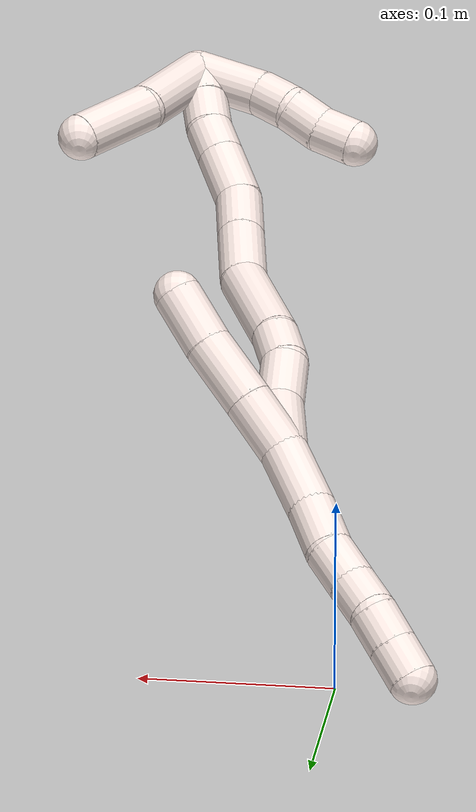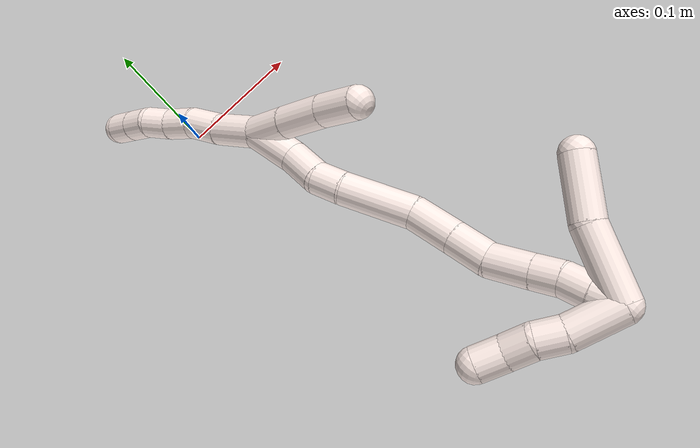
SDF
<sdf version="1.7">
 <world name="default">
  <model name="11">
   <static>0</static>
   <link name="11">
    <collision name="collision-cylinder-e_1_2_8">
     <pose>-0.008911 0.002092 -0.016258 -3.01365 -0.497924 2.64794</pose>
     <geometry><cylinder><radius>0.0125</radius><length>0.037315</length></cylinder></geometry>
     <surface>
      <friction><ode><mu>1.16</mu><mu2>1.16</mu2><slip1>0</slip1><slip2>0</slip2></ode></friction>
      <contact><ode><kp>1e+06</kp><kd>1</kd><max_vel>0</max_vel><min_depth>0.001</min_depth></ode></contact>
     </surface>
    </collision>
    <visual name="visual-cylinder-e_1_2_8">
     <pose>-0.008911 0.002092 -0.016258 -3.01365 -0.497924 2.64794</pose>
     <geometry><cylinder><radius>0.0125</radius><length>0.037315</length></cylinder></geometry>
     <material><ambient>1 0.933333 0.909804 1</ambient></material>
    </visual>
    <collision name="collision-cylinder-e_2_8_9">
     <pose>-0.022798 0.006316 -0.045427 -2.97787 -0.363394 2.30159</pose>
     <geometry><cylinder><radius>0.0125</radius><length>0.027999</length></cylinder></geometry>
     <surface>
      <friction><ode><mu>1.16</mu><mu2>1.16</mu2><slip1>0</slip1><slip2>0</slip2></ode></friction>
      <contact><ode><kp>1e+06</kp><kd>1</kd><max_vel>0</max_vel><min_depth>0.001</min_depth></ode></contact>
     </surface>
    </collision>
    <visual name="visual-cylinder-e_2_8_9">
     <pose>-0.022798 0.006316 -0.045427 -2.97787 -0.363394 2.30159</pose>
     <geometry><cylinder><radius>0.0125</radius><length>0.027999</length></cylinder></geometry>
     <material><ambient>1 0.933333 0.909804 1</ambient></material>
    </visual>
    <collision name="collision-cylinder-e_3_9_10">
     <pose>-0.034059 0.010988 -0.067806 -2.87956 -0.570137 2.29646</pose>
     <geometry><cylinder><radius>0.0125</radius><length>0.023289</length></cylinder></geometry>
     <surface>
      <friction><ode><mu>1.16</mu><mu2>1.16</mu2><slip1>0</slip1><slip2>0</slip2></ode></friction>
      <contact><ode><kp>1e+06</kp><kd>1</kd><max_vel>0</max_vel><min_depth>0.001</min_depth></ode></contact>
     </surface>
    </collision>
    <visual name="visual-cylinder-e_3_9_10">
     <pose>-0.034059 0.010988 -0.067806 -2.87956 -0.570137 2.29646</pose>
     <geometry><cylinder><radius>0.0125</radius><length>0.023289</length></cylinder></geometry>
     <material><ambient>1 0.933333 0.909804 1</ambient></material>
    </visual>
    <collision name="collision-cylinder-e_4_10_11">
     <pose>-0.04476 0.016757 -0.086412 -2.80185 -0.427496 1.80412</pose>
     <geometry><cylinder><radius>0.0125</radius><length>0.0213</length></cylinder></geometry>
     <surface>
      <friction><ode><mu>1.16</mu><mu2>1.16</mu2><slip1>0</slip1><slip2>0</slip2></ode></friction>
      <contact><ode><kp>1e+06</kp><kd>1</kd><max_vel>0</max_vel><min_depth>0.001</min_depth></ode></contact>
     </surface>
    </collision>
    <visual name="visual-cylinder-e_4_10_11">
     <pose>-0.04476 0.016757 -0.086412 -2.80185 -0.427496 1.80412</pose>
     <geometry><cylinder><radius>0.0125</radius><length>0.0213</length></cylinder></geometry>
     <material><ambient>1 0.933333 0.909804 1</ambient></material>
    </visual>
    <collision name="collision-cylinder-e_5_11_12">
     <pose>-0.055624 0.020671 -0.103202 -3.05251 -0.698258 2.89793</pose>
     <geometry><cylinder><radius>0.0125</radius><length>0.020062</length></cylinder></geometry>
     <surface>
      <friction><ode><mu>1.16</mu><mu2>1.16</mu2><slip1>0</slip1><slip2>0</slip2></ode></friction>
      <contact><ode><kp>1e+06</kp><kd>1</kd><max_vel>0</max_vel><min_depth>0.001</min_depth></ode></contact>
     </surface>
    </collision>
    <visual name="visual-cylinder-e_5_11_12">
     <pose>-0.055624 0.020671 -0.103202 -3.05251 -0.698258 2.89793</pose>
     <geometry><cylinder><radius>0.0125</radius><length>0.020062</length></cylinder></geometry>
     <material><ambient>1 0.933333 0.909804 1</ambient></material>
    </visual>
    <collision name="collision-cylinder-e_6_12_6">
     <pose>-0.068509 0.022035 -0.1185 -3.05277 -0.697798 2.89846</pose>
     <geometry><cylinder><radius>0.0125</radius><length>0.020034</length></cylinder></geometry>
     <surface>
      <friction><ode><mu>1.16</mu><mu2>1.16</mu2><slip1>0</slip1><slip2>0</slip2></ode></friction>
      <contact><ode><kp>1e+06</kp><kd>1</kd><max_vel>0</max_vel><min_depth>0.001</min_depth></ode></contact>
     </surface>
    </collision>
    <visual name="visual-cylinder-e_6_12_6">
     <pose>-0.068509 0.022035 -0.1185 -3.05277 -0.697798 2.89846</pose>
     <geometry><cylinder><radius>0.0125</radius><length>0.020034</length></cylinder></geometry>
     <material><ambient>1 0.933333 0.909804 1</ambient></material>
    </visual>
    <collision name="collision-cylinder-e_1_2_13">
     <pose>0.011471 -0.001345 0.011001 0.121671 0.802594 0.05168</pose>
     <geometry><cylinder><radius>0.0125</radius><length>0.031902</length></cylinder></geometry>
     <surface>
      <friction><ode><mu>1.16</mu><mu2>1.16</mu2><slip1>0</slip1><slip2>0</slip2></ode></friction>
      <contact><ode><kp>1e+06</kp><kd>1</kd><max_vel>0</max_vel><min_depth>0.001</min_depth></ode></contact>
     </surface>
    </collision>
    <visual name="visual-cylinder-e_1_2_13">
     <pose>0.011471 -0.001345 0.011001 0.121671 0.802594 0.05168</pose>
     <geometry><cylinder><radius>0.0125</radius><length>0.031902</length></cylinder></geometry>
     <material><ambient>1 0.933333 0.909804 1</ambient></material>
    </visual>
    <collision name="collision-cylinder-e_2_13_14">
     <pose>0.035833 -0.004675 0.034686 0.155208 0.787476 0.064586</pose>
     <geometry><cylinder><radius>0.0125</radius><length>0.036385</length></cylinder></geometry>
     <surface>
      <friction><ode><mu>1.16</mu><mu2>1.16</mu2><slip1>0</slip1><slip2>0</slip2></ode></friction>
      <contact><ode><kp>1e+06</kp><kd>1</kd><max_vel>0</max_vel><min_depth>0.001</min_depth></ode></contact>
     </surface>
    </collision>
    <visual name="visual-cylinder-e_2_13_14">
     <pose>0.035833 -0.004675 0.034686 0.155208 0.787476 0.064586</pose>
     <geometry><cylinder><radius>0.0125</radius><length>0.036385</length></cylinder></geometry>
     <material><ambient>1 0.933333 0.909804 1</ambient></material>
    </visual>
    <collision name="collision-cylinder-e_3_14_5">
     <pose>0.059407 -0.00747 0.059058 0.069252 0.73926 0.02684</pose>
     <geometry><cylinder><radius>0.0125</radius><length>0.031714</length></cylinder></geometry>
     <surface>
      <friction><ode><mu>1.16</mu><mu2>1.16</mu2><slip1>0</slip1><slip2>0</slip2></ode></friction>
      <contact><ode><kp>1e+06</kp><kd>1</kd><max_vel>0</max_vel><min_depth>0.001</min_depth></ode></contact>
     </surface>
    </collision>
    <visual name="visual-cylinder-e_3_14_5">
     <pose>0.059407 -0.00747 0.059058 0.069252 0.73926 0.02684</pose>
     <geometry><cylinder><radius>0.0125</radius><length>0.031714</length></cylinder></geometry>
     <material><ambient>1 0.933333 0.909804 1</ambient></material>
    </visual>
    <collision name="collision-cylinder-e_1_2_15">
     <pose>0.000332 -0.003061 0.018617 0.162973 0.017604 0.001438</pose>
     <geometry><cylinder><radius>0.0125</radius><length>0.037741</length></cylinder></geometry>
     <surface>
      <friction><ode><mu>1.16</mu><mu2>1.16</mu2><slip1>0</slip1><slip2>0</slip2></ode></friction>
      <contact><ode><kp>1e+06</kp><kd>1</kd><max_vel>0</max_vel><min_depth>0.001</min_depth></ode></contact>
     </surface>
    </collision>
    <visual name="visual-cylinder-e_1_2_15">
     <pose>0.000332 -0.003061 0.018617 0.162973 0.017604 0.001438</pose>
     <geometry><cylinder><radius>0.0125</radius><length>0.037741</length></cylinder></geometry>
     <material><ambient>1 0.933333 0.909804 1</ambient></material>
    </visual>
    <collision name="collision-cylinder-e_2_15_16">
     <pose>0.00154 -0.004583 0.051562 -0.10708 0.060726 -0.003255</pose>
     <geometry><cylinder><radius>0.0125</radius><length>0.028873</length></cylinder></geometry>
     <surface>
      <friction><ode><mu>1.16</mu><mu2>1.16</mu2><slip1>0</slip1><slip2>0</slip2></ode></friction>
      <contact><ode><kp>1e+06</kp><kd>1</kd><max_vel>0</max_vel><min_depth>0.001</min_depth></ode></contact>
     </surface>
    </collision>
    <visual name="visual-cylinder-e_2_15_16">
     <pose>0.00154 -0.004583 0.051562 -0.10708 0.060726 -0.003255</pose>
     <geometry><cylinder><radius>0.0125</radius><length>0.028873</length></cylinder></geometry>
     <material><ambient>1 0.933333 0.909804 1</ambient></material>
    </visual>
    <collision name="collision-cylinder-e_3_16_17">
     <pose>0.004636 -0.005293 0.076472 0.209562 0.202271 0.021344</pose>
     <geometry><cylinder><radius>0.0125</radius><length>0.02209</length></cylinder></geometry>
     <surface>
      <friction><ode><mu>1.16</mu><mu2>1.16</mu2><slip1>0</slip1><slip2>0</slip2></ode></friction>
      <contact><ode><kp>1e+06</kp><kd>1</kd><max_vel>0</max_vel><min_depth>0.001</min_depth></ode></contact>
     </surface>
    </collision>
    <visual name="visual-cylinder-e_3_16_17">
     <pose>0.004636 -0.005293 0.076472 0.209562 0.202271 0.021344</pose>
     <geometry><cylinder><radius>0.0125</radius><length>0.02209</length></cylinder></geometry>
     <material><ambient>1 0.933333 0.909804 1</ambient></material>
    </visual>
    <collision name="collision-cylinder-e_4_17_18">
     <pose>0.011813 -0.017248 0.112423 0.36534 0.18059 0.033448</pose>
     <geometry><cylinder><radius>0.0125</radius><length>0.055218</length></cylinder></geometry>
     <surface>
      <friction><ode><mu>1.16</mu><mu2>1.16</mu2><slip1>0</slip1><slip2>0</slip2></ode></friction>
      <contact><ode><kp>1e+06</kp><kd>1</kd><max_vel>0</max_vel><min_depth>0.001</min_depth></ode></contact>
     </surface>
    </collision>
    <visual name="visual-cylinder-e_4_17_18">
     <pose>0.011813 -0.017248 0.112423 0.36534 0.18059 0.033448</pose>
     <geometry><cylinder><radius>0.0125</radius><length>0.055218</length></cylinder></geometry>
     <material><ambient>1 0.933333 0.909804 1</ambient></material>
    </visual>
    <collision name="collision-cylinder-e_5_18_19">
     <pose>0.018406 -0.02805 0.155011 0.063774 0.094441 0.003015</pose>
     <geometry><cylinder><radius>0.0125</radius><length>0.034665</length></cylinder></geometry>
     <surface>
      <friction><ode><mu>1.16</mu><mu2>1.16</mu2><slip1>0</slip1><slip2>0</slip2></ode></friction>
      <contact><ode><kp>1e+06</kp><kd>1</kd><max_vel>0</max_vel><min_depth>0.001</min_depth></ode></contact>
     </surface>
    </collision>
    <visual name="visual-cylinder-e_5_18_19">
     <pose>0.018406 -0.02805 0.155011 0.063774 0.094441 0.003015</pose>
     <geometry><cylinder><radius>0.0125</radius><length>0.034665</length></cylinder></geometry>
     <material><ambient>1 0.933333 0.909804 1</ambient></material>
    </visual>
    <collision name="collision-cylinder-e_6_19_20">
     <pose>0.021362 -0.030004 0.18653 0.059622 0.091966 0.002744</pose>
     <geometry><cylinder><radius>0.0125</radius><length>0.02877</length></cylinder></geometry>
     <surface>
      <friction><ode><mu>1.16</mu><mu2>1.16</mu2><slip1>0</slip1><slip2>0</slip2></ode></friction>
      <contact><ode><kp>1e+06</kp><kd>1</kd><max_vel>0</max_vel><min_depth>0.001</min_depth></ode></contact>
     </surface>
    </collision>
    <visual name="visual-cylinder-e_6_19_20">
     <pose>0.021362 -0.030004 0.18653 0.059622 0.091966 0.002744</pose>
     <geometry><cylinder><radius>0.0125</radius><length>0.02877</length></cylinder></geometry>
     <material><ambient>1 0.933333 0.909804 1</ambient></material>
    </visual>
    <collision name="collision-cylinder-e_7_20_21">
     <pose>0.028789 -0.032811 0.215422 0.133106 0.393099 0.026542</pose>
     <geometry><cylinder><radius>0.0125</radius><length>0.03188</length></cylinder></geometry>
     <surface>
      <friction><ode><mu>1.16</mu><mu2>1.16</mu2><slip1>0</slip1><slip2>0</slip2></ode></friction>
      <contact><ode><kp>1e+06</kp><kd>1</kd><max_vel>0</max_vel><min_depth>0.001</min_depth></ode></contact>
     </surface>
    </collision>
    <visual name="visual-cylinder-e_7_20_21">
     <pose>0.028789 -0.032811 0.215422 0.133106 0.393099 0.026542</pose>
     <geometry><cylinder><radius>0.0125</radius><length>0.03188</length></cylinder></geometry>
     <material><ambient>1 0.933333 0.909804 1</ambient></material>
    </visual>
    <collision name="collision-cylinder-e_8_21_22">
     <pose>0.03898 -0.035821 0.239189 0.114613 0.41659 0.02425</pose>
     <geometry><cylinder><radius>0.0125</radius><length>0.020193</length></cylinder></geometry>
     <surface>
      <friction><ode><mu>1.16</mu><mu2>1.16</mu2><slip1>0</slip1><slip2>0</slip2></ode></friction>
      <contact><ode><kp>1e+06</kp><kd>1</kd><max_vel>0</max_vel><min_depth>0.001</min_depth></ode></contact>
     </surface>
    </collision>
    <visual name="visual-cylinder-e_8_21_22">
     <pose>0.03898 -0.035821 0.239189 0.114613 0.41659 0.02425</pose>
     <geometry><cylinder><radius>0.0125</radius><length>0.020193</length></cylinder></geometry>
     <material><ambient>1 0.933333 0.909804 1</ambient></material>
    </visual>
    <collision name="collision-cylinder-e_9_22_23">
     <pose>0.045577 -0.036914 0.258094 0.003735 0.252504 0.000474</pose>
     <geometry><cylinder><radius>0.0125</radius><length>0.020104</length></cylinder></geometry>
     <surface>
      <friction><ode><mu>1.16</mu><mu2>1.16</mu2><slip1>0</slip1><slip2>0</slip2></ode></friction>
      <contact><ode><kp>1e+06</kp><kd>1</kd><max_vel>0</max_vel><min_depth>0.001</min_depth></ode></contact>
     </surface>
    </collision>
    <visual name="visual-cylinder-e_9_22_23">
     <pose>0.045577 -0.036914 0.258094 0.003735 0.252504 0.000474</pose>
     <geometry><cylinder><radius>0.0125</radius><length>0.020104</length></cylinder></geometry>
     <material><ambient>1 0.933333 0.909804 1</ambient></material>
    </visual>
    <collision name="collision-cylinder-e_10_23_1">
     <pose>0.050956 -0.037544 0.277633 0.060541 0.283995 0.008658</pose>
     <geometry><cylinder><radius>0.0125</radius><length>0.020467</length></cylinder></geometry>
     <surface>
      <friction><ode><mu>1.16</mu><mu2>1.16</mu2><slip1>0</slip1><slip2>0</slip2></ode></friction>
      <contact><ode><kp>1e+06</kp><kd>1</kd><max_vel>0</max_vel><min_depth>0.001</min_depth></ode></contact>
     </surface>
    </collision>
    <visual name="visual-cylinder-e_10_23_1">
     <pose>0.050956 -0.037544 0.277633 0.060541 0.283995 0.008658</pose>
     <geometry><cylinder><radius>0.0125</radius><length>0.020467</length></cylinder></geometry>
     <material><ambient>1 0.933333 0.909804 1</ambient></material>
    </visual>
    <collision name="collision-cylinder-e_1_1_24">
     <pose>0.067402 -0.041138 0.264418 3.01204 0.529252 2.67168</pose>
     <geometry><cylinder><radius>0.0125</radius><length>0.05379</length></cylinder></geometry>
     <surface>
      <friction><ode><mu>1.16</mu><mu2>1.16</mu2><slip1>0</slip1><slip2>0</slip2></ode></friction>
      <contact><ode><kp>1e+06</kp><kd>1</kd><max_vel>0</max_vel><min_depth>0.001</min_depth></ode></contact>
     </surface>
    </collision>
    <visual name="visual-cylinder-e_1_1_24">
     <pose>0.067402 -0.041138 0.264418 3.01204 0.529252 2.67168</pose>
     <geometry><cylinder><radius>0.0125</radius><length>0.05379</length></cylinder></geometry>
     <material><ambient>1 0.933333 0.909804 1</ambient></material>
    </visual>
    <collision name="collision-cylinder-e_2_24_4">
     <pose>0.094879 -0.051704 0.224561 2.71919 0.645392 2.0013</pose>
     <geometry><cylinder><radius>0.0125</radius><length>0.04621</length></cylinder></geometry>
     <surface>
      <friction><ode><mu>1.16</mu><mu2>1.16</mu2><slip1>0</slip1><slip2>0</slip2></ode></friction>
      <contact><ode><kp>1e+06</kp><kd>1</kd><max_vel>0</max_vel><min_depth>0.001</min_depth></ode></contact>
     </surface>
    </collision>
    <visual name="visual-cylinder-e_2_24_4">
     <pose>0.094879 -0.051704 0.224561 2.71919 0.645392 2.0013</pose>
     <geometry><cylinder><radius>0.0125</radius><length>0.04621</length></cylinder></geometry>
     <material><ambient>1 0.933333 0.909804 1</ambient></material>
    </visual>
    <collision name="collision-cylinder-e_1_1_25">
     <pose>0.040134 -0.02658 0.280049 -2.13962 -0.784324 1.29375</pose>
     <geometry><cylinder><radius>0.0125</radius><length>0.03876</length></cylinder></geometry>
     <surface>
      <friction><ode><mu>1.16</mu><mu2>1.16</mu2><slip1>0</slip1><slip2>0</slip2></ode></friction>
      <contact><ode><kp>1e+06</kp><kd>1</kd><max_vel>0</max_vel><min_depth>0.001</min_depth></ode></contact>
     </surface>
    </collision>
    <visual name="visual-cylinder-e_1_1_25">
     <pose>0.040134 -0.02658 0.280049 -2.13962 -0.784324 1.29375</pose>
     <geometry><cylinder><radius>0.0125</radius><length>0.03876</length></cylinder></geometry>
     <material><ambient>1 0.933333 0.909804 1</ambient></material>
    </visual>
    <collision name="collision-cylinder-e_2_25_26">
     <pose>0.020361 -0.009637 0.26682 -2.39668 -0.653605 1.42922</pose>
     <geometry><cylinder><radius>0.0125</radius><length>0.020011</length></cylinder></geometry>
     <surface>
      <friction><ode><mu>1.16</mu><mu2>1.16</mu2><slip1>0</slip1><slip2>0</slip2></ode></friction>
      <contact><ode><kp>1e+06</kp><kd>1</kd><max_vel>0</max_vel><min_depth>0.001</min_depth></ode></contact>
     </surface>
    </collision>
    <visual name="visual-cylinder-e_2_25_26">
     <pose>0.020361 -0.009637 0.26682 -2.39668 -0.653605 1.42922</pose>
     <geometry><cylinder><radius>0.0125</radius><length>0.020011</length></cylinder></geometry>
     <material><ambient>1 0.933333 0.909804 1</ambient></material>
    </visual>
    <collision name="collision-cylinder-e_3_26_27">
     <pose>0.006007 -0.001039 0.256205 -2.54927 -0.962707 2.08419</pose>
     <geometry><cylinder><radius>0.0125</radius><length>0.020153</length></cylinder></geometry>
     <surface>
      <friction><ode><mu>1.16</mu><mu2>1.16</mu2><slip1>0</slip1><slip2>0</slip2></ode></friction>
      <contact><ode><kp>1e+06</kp><kd>1</kd><max_vel>0</max_vel><min_depth>0.001</min_depth></ode></contact>
     </surface>
    </collision>
    <visual name="visual-cylinder-e_3_26_27">
     <pose>0.006007 -0.001039 0.256205 -2.54927 -0.962707 2.08419</pose>
     <geometry><cylinder><radius>0.0125</radius><length>0.020153</length></cylinder></geometry>
     <material><ambient>1 0.933333 0.909804 1</ambient></material>
    </visual>
    <collision name="collision-cylinder-e_4_27_3">
     <pose>-0.009611 0.008018 0.246642 -2.25719 -0.771652 1.41811</pose>
     <geometry><cylinder><radius>0.0125</radius><length>0.021076</length></cylinder></geometry>
     <surface>
      <friction><ode><mu>1.16</mu><mu2>1.16</mu2><slip1>0</slip1><slip2>0</slip2></ode></friction>
      <contact><ode><kp>1e+06</kp><kd>1</kd><max_vel>0</max_vel><min_depth>0.001</min_depth></ode></contact>
     </surface>
    </collision>
    <visual name="visual-cylinder-e_4_27_3">
     <pose>-0.009611 0.008018 0.246642 -2.25719 -0.771652 1.41811</pose>
     <geometry><cylinder><radius>0.0125</radius><length>0.021076</length></cylinder></geometry>
     <material><ambient>1 0.933333 0.909804 1</ambient></material>
    </visual>
    <collision name="collision-sphere-3">
     <pose>-0.01696 0.013861 0.241855 0 -0 0</pose>
     <geometry><sphere><radius>0.0125</radius></sphere></geometry>
     <surface>
      <friction><ode><mu>1.16</mu><mu2>1.16</mu2><slip1>0</slip1><slip2>0</slip2></ode></friction>
      <contact><ode><kp>1e+06</kp><kd>1</kd><max_vel>0</max_vel><min_depth>0.001</min_depth></ode></contact>
     </surface>
    </collision>
    <visual name="visual-sphere-3">
     <pose>-0.01696 0.013861 0.241855 0 -0 0</pose>
     <geometry><sphere><radius>0.0125</radius></sphere></geometry>
     <material><ambient>1 0.933333 0.909804 1</ambient></material>
    </visual>
    <collision name="collision-sphere-27">
     <pose>-0.002263 0.002175 0.251429 0 -0 0</pose>
     <geometry><sphere><radius>0.0125</radius></sphere></geometry>
     <surface>
      <friction><ode><mu>1.16</mu><mu2>1.16</mu2><slip1>0</slip1><slip2>0</slip2></ode></friction>
      <contact><ode><kp>1e+06</kp><kd>1</kd><max_vel>0</max_vel><min_depth>0.001</min_depth></ode></contact>
     </surface>
    </collision>
    <visual name="visual-sphere-27">
     <pose>-0.002263 0.002175 0.251429 0 -0 0</pose>
     <geometry><sphere><radius>0.0125</radius></sphere></geometry>
     <material><ambient>1 0.933333 0.909804 1</ambient></material>
    </visual>
    <collision name="collision-sphere-26">
     <pose>0.014277 -0.004252 0.260981 0 -0 0</pose>
     <geometry><sphere><radius>0.0125</radius></sphere></geometry>
     <surface>
      <friction><ode><mu>1.16</mu><mu2>1.16</mu2><slip1>0</slip1><slip2>0</slip2></ode></friction>
      <contact><ode><kp>1e+06</kp><kd>1</kd><max_vel>0</max_vel><min_depth>0.001</min_depth></ode></contact>
     </surface>
    </collision>
    <visual name="visual-sphere-26">
     <pose>0.014277 -0.004252 0.260981 0 -0 0</pose>
     <geometry><sphere><radius>0.0125</radius></sphere></geometry>
     <material><ambient>1 0.933333 0.909804 1</ambient></material>
    </visual>
    <collision name="collision-sphere-25">
     <pose>0.026445 -0.015022 0.27266 0 -0 0</pose>
     <geometry><sphere><radius>0.0125</radius></sphere></geometry>
     <surface>
      <friction><ode><mu>1.16</mu><mu2>1.16</mu2><slip1>0</slip1><slip2>0</slip2></ode></friction>
      <contact><ode><kp>1e+06</kp><kd>1</kd><max_vel>0</max_vel><min_depth>0.001</min_depth></ode></contact>
     </surface>
    </collision>
    <visual name="visual-sphere-25">
     <pose>0.026445 -0.015022 0.27266 0 -0 0</pose>
     <geometry><sphere><radius>0.0125</radius></sphere></geometry>
     <material><ambient>1 0.933333 0.909804 1</ambient></material>
    </visual>
    <collision name="collision-sphere-4">
     <pose>0.108777 -0.059271 0.207726 0 -0 0</pose>
     <geometry><sphere><radius>0.0125</radius></sphere></geometry>
     <surface>
      <friction><ode><mu>1.16</mu><mu2>1.16</mu2><slip1>0</slip1><slip2>0</slip2></ode></friction>
      <contact><ode><kp>1e+06</kp><kd>1</kd><max_vel>0</max_vel><min_depth>0.001</min_depth></ode></contact>
     </surface>
    </collision>
    <visual name="visual-sphere-4">
     <pose>0.108777 -0.059271 0.207726 0 -0 0</pose>
     <geometry><sphere><radius>0.0125</radius></sphere></geometry>
     <material><ambient>1 0.933333 0.909804 1</ambient></material>
    </visual>
    <collision name="collision-sphere-24">
     <pose>0.080981 -0.044137 0.241397 0 -0 0</pose>
     <geometry><sphere><radius>0.0125</radius></sphere></geometry>
     <surface>
      <friction><ode><mu>1.16</mu><mu2>1.16</mu2><slip1>0</slip1><slip2>0</slip2></ode></friction>
      <contact><ode><kp>1e+06</kp><kd>1</kd><max_vel>0</max_vel><min_depth>0.001</min_depth></ode></contact>
     </surface>
    </collision>
    <visual name="visual-sphere-24">
     <pose>0.080981 -0.044137 0.241397 0 -0 0</pose>
     <geometry><sphere><radius>0.0125</radius></sphere></geometry>
     <material><ambient>1 0.933333 0.909804 1</ambient></material>
    </visual>
    <collision name="collision-sphere-1">
     <pose>0.053823 -0.038139 0.287438 0 -0 0</pose>
     <geometry><sphere><radius>0.0125</radius></sphere></geometry>
     <surface>
      <friction><ode><mu>1.16</mu><mu2>1.16</mu2><slip1>0</slip1><slip2>0</slip2></ode></friction>
      <contact><ode><kp>1e+06</kp><kd>1</kd><max_vel>0</max_vel><min_depth>0.001</min_depth></ode></contact>
     </surface>
    </collision>
    <visual name="visual-sphere-1">
     <pose>0.053823 -0.038139 0.287438 0 -0 0</pose>
     <geometry><sphere><radius>0.0125</radius></sphere></geometry>
     <material><ambient>1 0.933333 0.909804 1</ambient></material>
    </visual>
    <collision name="collision-sphere-23">
     <pose>0.048088 -0.03695 0.267827 0 -0 0</pose>
     <geometry><sphere><radius>0.0125</radius></sphere></geometry>
     <surface>
      <friction><ode><mu>1.16</mu><mu2>1.16</mu2><slip1>0</slip1><slip2>0</slip2></ode></friction>
      <contact><ode><kp>1e+06</kp><kd>1</kd><max_vel>0</max_vel><min_depth>0.001</min_depth></ode></contact>
     </surface>
    </collision>
    <visual name="visual-sphere-23">
     <pose>0.048088 -0.03695 0.267827 0 -0 0</pose>
     <geometry><sphere><radius>0.0125</radius></sphere></geometry>
     <material><ambient>1 0.933333 0.909804 1</ambient></material>
    </visual>
    <collision name="collision-sphere-22">
     <pose>0.043066 -0.036877 0.248361 0 -0 0</pose>
     <geometry><sphere><radius>0.0125</radius></sphere></geometry>
     <surface>
      <friction><ode><mu>1.16</mu><mu2>1.16</mu2><slip1>0</slip1><slip2>0</slip2></ode></friction>
      <contact><ode><kp>1e+06</kp><kd>1</kd><max_vel>0</max_vel><min_depth>0.001</min_depth></ode></contact>
     </surface>
    </collision>
    <visual name="visual-sphere-22">
     <pose>0.043066 -0.036877 0.248361 0 -0 0</pose>
     <geometry><sphere><radius>0.0125</radius></sphere></geometry>
     <material><ambient>1 0.933333 0.909804 1</ambient></material>
    </visual>
    <collision name="collision-sphere-21">
     <pose>0.034895 -0.034765 0.230016 0 -0 0</pose>
     <geometry><sphere><radius>0.0125</radius></sphere></geometry>
     <surface>
      <friction><ode><mu>1.16</mu><mu2>1.16</mu2><slip1>0</slip1><slip2>0</slip2></ode></friction>
      <contact><ode><kp>1e+06</kp><kd>1</kd><max_vel>0</max_vel><min_depth>0.001</min_depth></ode></contact>
     </surface>
    </collision>
    <visual name="visual-sphere-21">
     <pose>0.034895 -0.034765 0.230016 0 -0 0</pose>
     <geometry><sphere><radius>0.0125</radius></sphere></geometry>
     <material><ambient>1 0.933333 0.909804 1</ambient></material>
    </visual>
    <collision name="collision-sphere-12">
     <pose>-0.062073 0.021354 -0.110855 0 -0 0</pose>
     <geometry><sphere><radius>0.0125</radius></sphere></geometry>
     <surface>
      <friction><ode><mu>1.16</mu><mu2>1.16</mu2><slip1>0</slip1><slip2>0</slip2></ode></friction>
      <contact><ode><kp>1e+06</kp><kd>1</kd><max_vel>0</max_vel><min_depth>0.001</min_depth></ode></contact>
     </surface>
    </collision>
    <visual name="visual-sphere-12">
     <pose>-0.062073 0.021354 -0.110855 0 -0 0</pose>
     <geometry><sphere><radius>0.0125</radius></sphere></geometry>
     <material><ambient>1 0.933333 0.909804 1</ambient></material>
    </visual>
    <collision name="collision-sphere-11">
     <pose>-0.049176 0.019987 -0.095549 0 -0 0</pose>
     <geometry><sphere><radius>0.0125</radius></sphere></geometry>
     <surface>
      <friction><ode><mu>1.16</mu><mu2>1.16</mu2><slip1>0</slip1><slip2>0</slip2></ode></friction>
      <contact><ode><kp>1e+06</kp><kd>1</kd><max_vel>0</max_vel><min_depth>0.001</min_depth></ode></contact>
     </surface>
    </collision>
    <visual name="visual-sphere-11">
     <pose>-0.049176 0.019987 -0.095549 0 -0 0</pose>
     <geometry><sphere><radius>0.0125</radius></sphere></geometry>
     <material><ambient>1 0.933333 0.909804 1</ambient></material>
    </visual>
    <collision name="collision-sphere-10">
     <pose>-0.040345 0.013528 -0.077274 0 -0 0</pose>
     <geometry><sphere><radius>0.0125</radius></sphere></geometry>
     <surface>
      <friction><ode><mu>1.16</mu><mu2>1.16</mu2><slip1>0</slip1><slip2>0</slip2></ode></friction>
      <contact><ode><kp>1e+06</kp><kd>1</kd><max_vel>0</max_vel><min_depth>0.001</min_depth></ode></contact>
     </surface>
    </collision>
    <visual name="visual-sphere-10">
     <pose>-0.040345 0.013528 -0.077274 0 -0 0</pose>
     <geometry><sphere><radius>0.0125</radius></sphere></geometry>
     <material><ambient>1 0.933333 0.909804 1</ambient></material>
    </visual>
    <collision name="collision-sphere-9">
     <pose>-0.027774 0.008449 -0.058337 0 -0 0</pose>
     <geometry><sphere><radius>0.0125</radius></sphere></geometry>
     <surface>
      <friction><ode><mu>1.16</mu><mu2>1.16</mu2><slip1>0</slip1><slip2>0</slip2></ode></friction>
      <contact><ode><kp>1e+06</kp><kd>1</kd><max_vel>0</max_vel><min_depth>0.001</min_depth></ode></contact>
     </surface>
    </collision>
    <visual name="visual-sphere-9">
     <pose>-0.027774 0.008449 -0.058337 0 -0 0</pose>
     <geometry><sphere><radius>0.0125</radius></sphere></geometry>
     <material><ambient>1 0.933333 0.909804 1</ambient></material>
    </visual>
    <collision name="collision-sphere-2">
     <geometry><sphere><radius>0.0125</radius></sphere></geometry>
     <surface>
      <friction><ode><mu>1.16</mu><mu2>1.16</mu2><slip1>0</slip1><slip2>0</slip2></ode></friction>
      <contact><ode><kp>1e+06</kp><kd>1</kd><max_vel>0</max_vel><min_depth>0.001</min_depth></ode></contact>
     </surface>
    </collision>
    <visual name="visual-sphere-2">
     <geometry><sphere><radius>0.0125</radius></sphere></geometry>
     <material><ambient>1 0.933333 0.909804 1</ambient></material>
    </visual>
    <collision name="collision-sphere-19">
     <pose>0.020041 -0.02915 0.172231 0 -0 0</pose>
     <geometry><sphere><radius>0.0125</radius></sphere></geometry>
     <surface>
      <friction><ode><mu>1.16</mu><mu2>1.16</mu2><slip1>0</slip1><slip2>0</slip2></ode></friction>
      <contact><ode><kp>1e+06</kp><kd>1</kd><max_vel>0</max_vel><min_depth>0.001</min_depth></ode></contact>
     </surface>
    </collision>
    <visual name="visual-sphere-19">
     <pose>0.020041 -0.02915 0.172231 0 -0 0</pose>
     <geometry><sphere><radius>0.0125</radius></sphere></geometry>
     <material><ambient>1 0.933333 0.909804 1</ambient></material>
    </visual>
    <collision name="collision-sphere-8">
     <pose>-0.017822 0.004183 -0.032516 0 -0 0</pose>
     <geometry><sphere><radius>0.0125</radius></sphere></geometry>
     <surface>
      <friction><ode><mu>1.16</mu><mu2>1.16</mu2><slip1>0</slip1><slip2>0</slip2></ode></friction>
      <contact><ode><kp>1e+06</kp><kd>1</kd><max_vel>0</max_vel><min_depth>0.001</min_depth></ode></contact>
     </surface>
    </collision>
    <visual name="visual-sphere-8">
     <pose>-0.017822 0.004183 -0.032516 0 -0 0</pose>
     <geometry><sphere><radius>0.0125</radius></sphere></geometry>
     <material><ambient>1 0.933333 0.909804 1</ambient></material>
    </visual>
    <collision name="collision-sphere-6">
     <pose>-0.074945 0.022716 -0.126145 0 -0 0</pose>
     <geometry><sphere><radius>0.0125</radius></sphere></geometry>
     <surface>
      <friction><ode><mu>1.16</mu><mu2>1.16</mu2><slip1>0</slip1><slip2>0</slip2></ode></friction>
      <contact><ode><kp>1e+06</kp><kd>1</kd><max_vel>0</max_vel><min_depth>0.001</min_depth></ode></contact>
     </surface>
    </collision>
    <visual name="visual-sphere-6">
     <pose>-0.074945 0.022716 -0.126145 0 -0 0</pose>
     <geometry><sphere><radius>0.0125</radius></sphere></geometry>
     <material><ambient>1 0.933333 0.909804 1</ambient></material>
    </visual>
    <collision name="collision-sphere-13">
     <pose>0.022943 -0.00269 0.022003 0 -0 0</pose>
     <geometry><sphere><radius>0.0125</radius></sphere></geometry>
     <surface>
      <friction><ode><mu>1.16</mu><mu2>1.16</mu2><slip1>0</slip1><slip2>0</slip2></ode></friction>
      <contact><ode><kp>1e+06</kp><kd>1</kd><max_vel>0</max_vel><min_depth>0.001</min_depth></ode></contact>
     </surface>
    </collision>
    <visual name="visual-sphere-13">
     <pose>0.022943 -0.00269 0.022003 0 -0 0</pose>
     <geometry><sphere><radius>0.0125</radius></sphere></geometry>
     <material><ambient>1 0.933333 0.909804 1</ambient></material>
    </visual>
    <collision name="collision-sphere-14">
     <pose>0.048724 -0.006659 0.047369 0 -0 0</pose>
     <geometry><sphere><radius>0.0125</radius></sphere></geometry>
     <surface>
      <friction><ode><mu>1.16</mu><mu2>1.16</mu2><slip1>0</slip1><slip2>0</slip2></ode></friction>
      <contact><ode><kp>1e+06</kp><kd>1</kd><max_vel>0</max_vel><min_depth>0.001</min_depth></ode></contact>
     </surface>
    </collision>
    <visual name="visual-sphere-14">
     <pose>0.048724 -0.006659 0.047369 0 -0 0</pose>
     <geometry><sphere><radius>0.0125</radius></sphere></geometry>
     <material><ambient>1 0.933333 0.909804 1</ambient></material>
    </visual>
    <collision name="collision-sphere-5">
     <pose>0.070091 -0.008281 0.070748 0 -0 0</pose>
     <geometry><sphere><radius>0.0125</radius></sphere></geometry>
     <surface>
      <friction><ode><mu>1.16</mu><mu2>1.16</mu2><slip1>0</slip1><slip2>0</slip2></ode></friction>
      <contact><ode><kp>1e+06</kp><kd>1</kd><max_vel>0</max_vel><min_depth>0.001</min_depth></ode></contact>
     </surface>
    </collision>
    <visual name="visual-sphere-5">
     <pose>0.070091 -0.008281 0.070748 0 -0 0</pose>
     <geometry><sphere><radius>0.0125</radius></sphere></geometry>
     <material><ambient>1 0.933333 0.909804 1</ambient></material>
    </visual>
    <collision name="collision-sphere-15">
     <pose>0.000664 -0.006123 0.037235 0 -0 0</pose>
     <geometry><sphere><radius>0.0125</radius></sphere></geometry>
     <surface>
      <friction><ode><mu>1.16</mu><mu2>1.16</mu2><slip1>0</slip1><slip2>0</slip2></ode></friction>
      <contact><ode><kp>1e+06</kp><kd>1</kd><max_vel>0</max_vel><min_depth>0.001</min_depth></ode></contact>
     </surface>
    </collision>
    <visual name="visual-sphere-15">
     <pose>0.000664 -0.006123 0.037235 0 -0 0</pose>
     <geometry><sphere><radius>0.0125</radius></sphere></geometry>
     <material><ambient>1 0.933333 0.909804 1</ambient></material>
    </visual>
    <collision name="collision-sphere-16">
     <pose>0.002417 -0.003042 0.065889 0 -0 0</pose>
     <geometry><sphere><radius>0.0125</radius></sphere></geometry>
     <surface>
      <friction><ode><mu>1.16</mu><mu2>1.16</mu2><slip1>0</slip1><slip2>0</slip2></ode></friction>
      <contact><ode><kp>1e+06</kp><kd>1</kd><max_vel>0</max_vel><min_depth>0.001</min_depth></ode></contact>
     </surface>
    </collision>
    <visual name="visual-sphere-16">
     <pose>0.002417 -0.003042 0.065889 0 -0 0</pose>
     <geometry><sphere><radius>0.0125</radius></sphere></geometry>
     <material><ambient>1 0.933333 0.909804 1</ambient></material>
    </visual>
    <collision name="collision-sphere-17">
     <pose>0.006854 -0.007544 0.087056 0 -0 0</pose>
     <geometry><sphere><radius>0.0125</radius></sphere></geometry>
     <surface>
      <friction><ode><mu>1.16</mu><mu2>1.16</mu2><slip1>0</slip1><slip2>0</slip2></ode></friction>
      <contact><ode><kp>1e+06</kp><kd>1</kd><max_vel>0</max_vel><min_depth>0.001</min_depth></ode></contact>
     </surface>
    </collision>
    <visual name="visual-sphere-17">
     <pose>0.006854 -0.007544 0.087056 0 -0 0</pose>
     <geometry><sphere><radius>0.0125</radius></sphere></geometry>
     <material><ambient>1 0.933333 0.909804 1</ambient></material>
    </visual>
    <collision name="collision-sphere-18">
     <pose>0.016772 -0.026951 0.13779 0 -0 0</pose>
     <geometry><sphere><radius>0.0125</radius></sphere></geometry>
     <surface>
      <friction><ode><mu>1.16</mu><mu2>1.16</mu2><slip1>0</slip1><slip2>0</slip2></ode></friction>
      <contact><ode><kp>1e+06</kp><kd>1</kd><max_vel>0</max_vel><min_depth>0.001</min_depth></ode></contact>
     </surface>
    </collision>
    <visual name="visual-sphere-18">
     <pose>0.016772 -0.026951 0.13779 0 -0 0</pose>
     <geometry><sphere><radius>0.0125</radius></sphere></geometry>
     <material><ambient>1 0.933333 0.909804 1</ambient></material>
    </visual>
    <collision name="collision-sphere-20">
     <pose>0.022683 -0.030857 0.200828 0 -0 0</pose>
     <geometry><sphere><radius>0.0125</radius></sphere></geometry>
     <surface>
      <friction><ode><mu>1.16</mu><mu2>1.16</mu2><slip1>0</slip1><slip2>0</slip2></ode></friction>
      <contact><ode><kp>1e+06</kp><kd>1</kd><max_vel>0</max_vel><min_depth>0.001</min_depth></ode></contact>
     </surface>
    </collision>
    <visual name="visual-sphere-20">
     <pose>0.022683 -0.030857 0.200828 0 -0 0</pose>
     <geometry><sphere><radius>0.0125</radius></sphere></geometry>
     <material><ambient>1 0.933333 0.909804 1</ambient></material>
    </visual>
    <inertial>
     <pose>0.018624 -0.014448 0.117727 0 -0 0</pose>
     <mass>0.75</mass>
     <inertia><ixx>6e-05</ixx><ixy>0</ixy><ixz>0</ixz><iyy>0.000122</iyy><iyz>0</iyz><izz>-1e-06</izz></inertia>
    </inertial>
   </link>
   <pose>0.03328 -0.053429 0.106062 1.0617 -0.659916 0.389196</pose>
  </model>
 </world>
</sdf>
